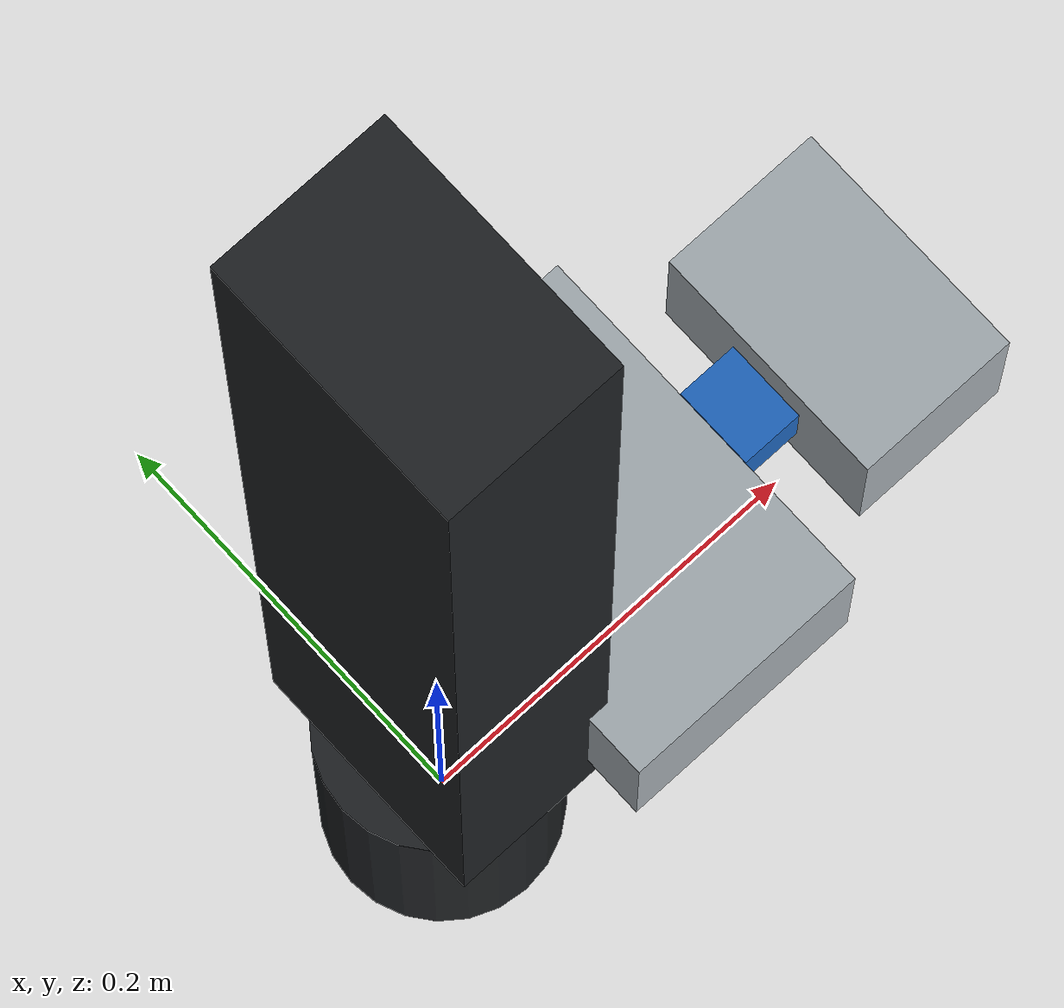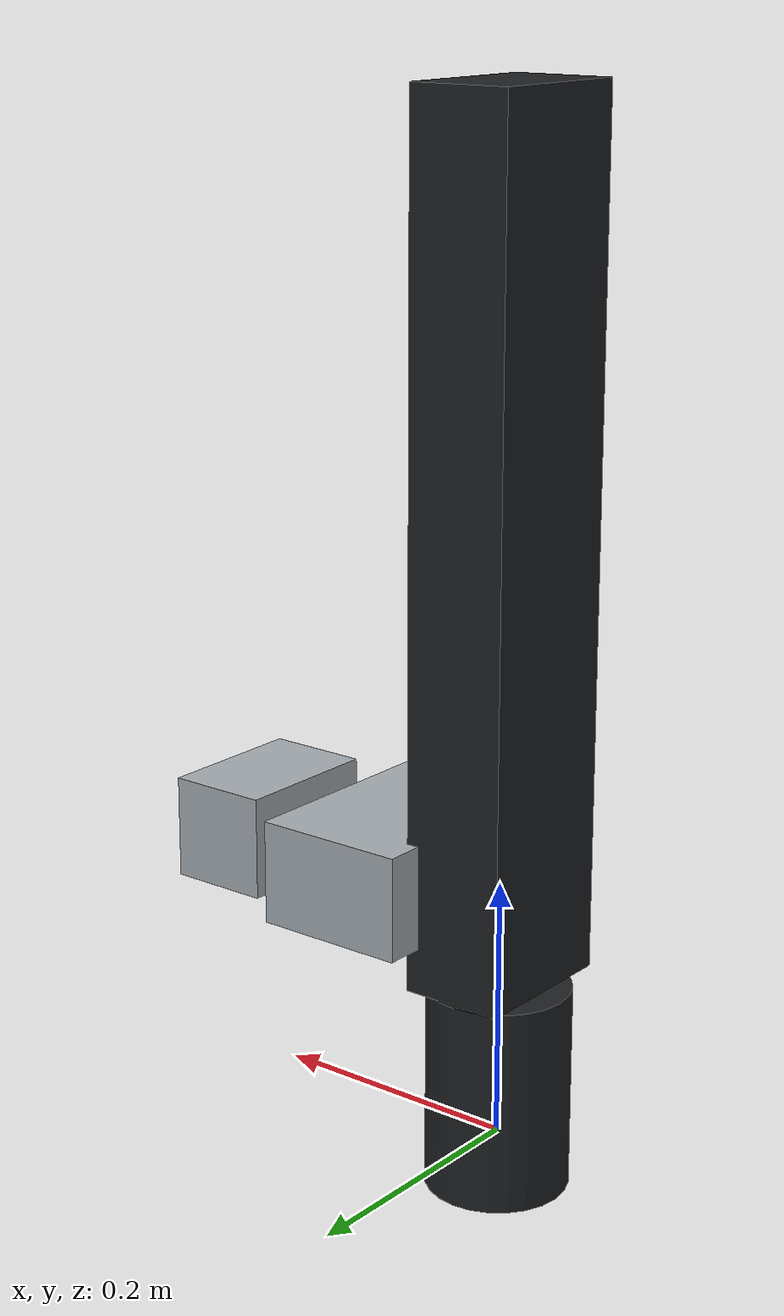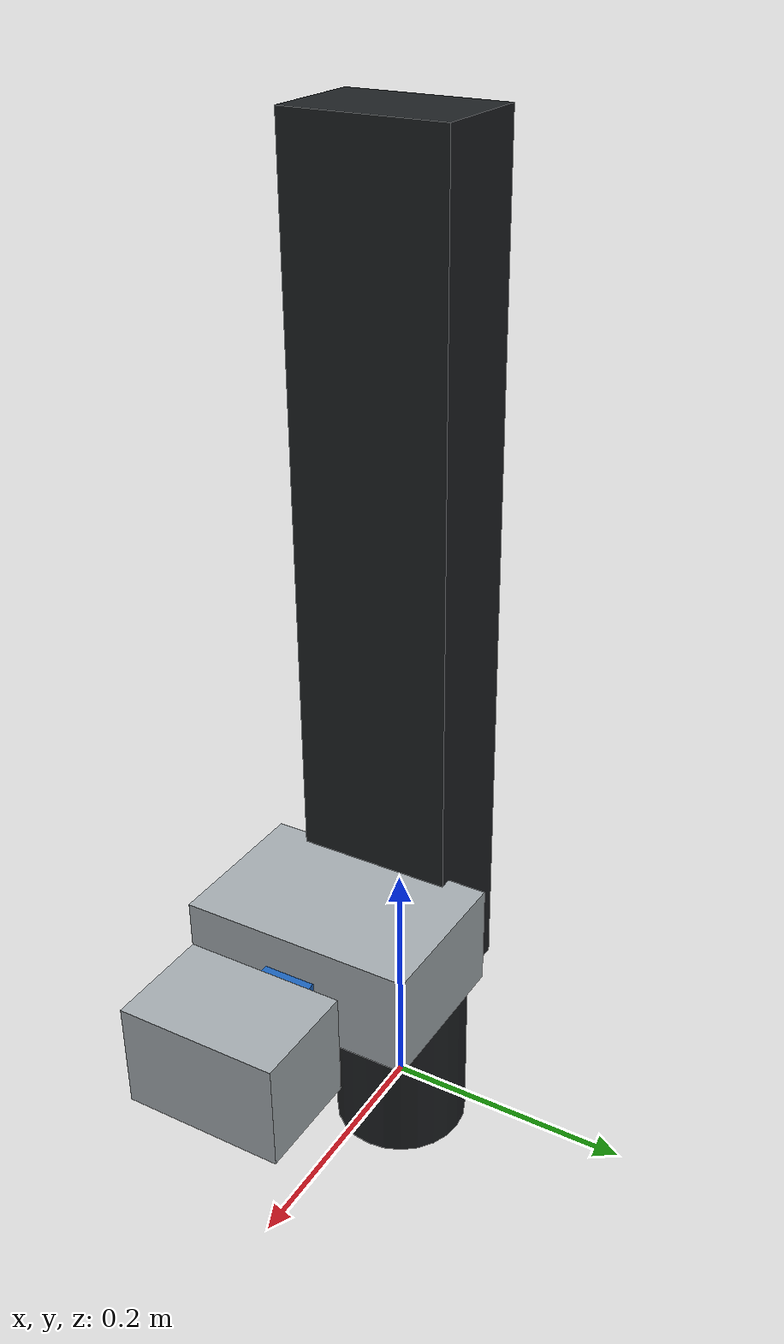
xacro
<?xml version="1.0"?>
<robot xmlns:xacro="http://www.ros.org/wiki/xacro" name="zfc_stage">
  <xacro:arg name="backend" default="ethercat"/>
  <xacro:arg name="controllers_file" default="${xacro.abs_filename('../config/controllers.yaml')}"/>
  <xacro:arg name="backend_file" default="${xacro.abs_filename('../config/gazebo.yaml')}"/>
  <xacro:arg name="hardware_calibration_file" default="${xacro.abs_filename('../config/hardware_calibration.yaml')}"/>
  <xacro:arg name="travel_m" default="0.50"/>
  <!-- Fortress velocity servo requires headroom above the 0.1 m/s trajectory;
       at the exact DART velocity limit its response can remain saturated. -->
  <xacro:arg name="velocity_limit_mps" default="${0.2 if '$(arg backend)' == 'gazebo' else 0.1}"/>
  <xacro:arg name="effort_limit_n" default="100.0"/>
  <xacro:arg name="carriage_mass_kg" default="2.0"/>
  <xacro:arg name="tool_mass_kg" default="0.20"/>
  <xacro:arg name="initial_position_m" default="0.0"/>
  <xacro:arg name="diagnostic_mode" default="production"/>
  <xacro:property name="backend" value="$(arg backend)"/>
  <xacro:property name="backend_plugins" value="${dict(ethercat='zfc_ethercat_hardware/EthercatHardware', gazebo='gz_ros2_control/GazeboSimSystem')}"/>
  <xacro:property name="controllers_path" value="$(arg controllers_file)"/>
  <xacro:property name="travel" value="$(arg travel_m)"/>
  <xacro:property name="carriage_mass" value="$(arg carriage_mass_kg)"/>
  <xacro:property name="tool_mass" value="$(arg tool_mass_kg)"/>
  <xacro:property name="simulation_datum" value="${0.25 if backend == 'gazebo' else 0.0}"/>

  <material name="rail_black"><color rgba="0.12 0.13 0.14 1"/></material>
  <material name="aluminium"><color rgba="0.65 0.68 0.70 1"/></material>
  <material name="sensor_blue"><color rgba="0.12 0.40 0.75 1"/></material>

  <xacro:macro name="box_inertia" params="mass sx sy sz xyz:='0 0 0'">
    <inertial>
      <origin xyz="${xyz}"/>
      <mass value="${mass}"/>
      <inertia ixx="${mass*(sy*sy+sz*sz)/12}" ixy="0" ixz="0"
               iyy="${mass*(sx*sx+sz*sz)/12}" iyz="0"
               izz="${mass*(sx*sx+sy*sy)/12}"/>
    </inertial>
  </xacro:macro>

  <!-- Fixed world attachment, rather than making the whole model static. -->
  <link name="world"/>
  <joint name="world_to_base" type="fixed">
    <parent link="world"/><child link="base_link"/>
  </joint>
  <link name="base_link">
    <xacro:box_inertia mass="5.0" sx="0.08" sy="0.12" sz="${travel+0.15}"
                       xyz="0 0 ${0.20+travel/2}"/>
    <visual>
      <origin xyz="0 0 ${0.20+travel/2}"/>
      <geometry><box size="0.08 0.12 ${travel+0.15}"/></geometry>
      <material name="rail_black"/>
    </visual>
    <collision>
      <origin xyz="0 0 ${0.20+travel/2}"/>
      <geometry><box size="0.08 0.12 ${travel+0.15}"/></geometry>
    </collision>
    <!-- Stationary motor drawn for context; no rotor/transmission dynamics. -->
    <visual>
      <origin xyz="0 0 0.04"/>
      <geometry><cylinder radius="0.055" length="0.16"/></geometry>
      <material name="rail_black"/>
    </visual>
  </link>

  <joint name="carriage" type="prismatic">
    <parent link="base_link"/><child link="carriage_link"/>
    <origin xyz="${0.14 if backend == 'gazebo' else 0.09} 0 ${0.20+simulation_datum}"/>
    <axis xyz="0 0 1"/>
    <limit lower="${-simulation_datum}" upper="${travel-simulation_datum}" effort="$(arg effort_limit_n)"
           velocity="$(arg velocity_limit_mps)"/>
    <dynamics damping="0.0" friction="0.0"/>
  </joint>
  <link name="carriage_link">
    <xacro:box_inertia mass="${carriage_mass}" sx="0.12" sy="0.18" sz="0.08"/>
    <visual><geometry><box size="0.12 0.18 0.08"/></geometry><material name="aluminium"/></visual>
    <collision><geometry><box size="0.12 0.18 0.08"/></geometry></collision>
  </link>

  <joint name="load_cell_joint" type="fixed">
    <parent link="carriage_link"/><child link="load_cell_link"/>
    <origin xyz="0.08 0 0" rpy="0 -1.5707963267948966 0"/>
  </joint>
  <link name="load_cell_link">
    <xacro:box_inertia mass="0.05" sx="0.03" sy="0.04" sz="0.03"/>
    <visual><geometry><box size="0.03 0.04 0.03"/></geometry><material name="sensor_blue"/></visual>
    <collision><geometry><box size="0.03 0.04 0.03"/></geometry></collision>
  </link>
  <joint name="tool_mount" type="fixed">
    <parent link="load_cell_link"/><child link="tool_link"/>
    <origin xyz="0 0 ${-0.06 if backend == 'gazebo' else -0.055}"/>
  </joint>
  <link name="tool_link">
    <xacro:box_inertia mass="${tool_mass}" sx="0.08" sy="0.12" sz="0.08"/>
    <visual><geometry><box size="0.08 0.12 0.08"/></geometry><material name="aluminium"/></visual>
    <collision><geometry><box size="0.08 0.12 0.08"/></geometry></collision>
  </link>

  <!-- One shared controller-facing contract, regardless of transport. -->
  <ros2_control name="StageSystem" type="system">
    <hardware>
      <!-- Dictionary lookup rejects invalid backends during expansion. -->
      <plugin>${backend_plugins[backend]}</plugin>
      <xacro:if value="${backend == 'ethercat'}">
        <xacro:property name="cal" value="${xacro.load_yaml('$(arg hardware_calibration_file)')}"/>
        <param name="startup_timeout_seconds">20</param>
        <param name="update_rate_hz">1000</param>
        <param name="diagnostic_mode">$(arg diagnostic_mode)</param>
        <param name="conventions_confirmed">${dict([(True, 'true'), (False, 'false')])[cal['conventions_confirmed']]}</param>
        <param name="force_frame">${cal['force_frame']}</param>
        <param name="force_channel_mapping">${cal['force_channel_mapping']}</param>
        <!-- Installation calibration; NaN must block hardware configuration. -->
        <param name="m_per_count">${cal['m_per_count']}</param>
        <param name="velocity_from_encoder">${dict([(True, 'true'), (False, 'false')])[cal.get('velocity_from_encoder', True)]}</param>
        <param name="soft_bounds_enabled">${dict([(True, 'true'), (False, 'false')])[cal.get('soft_bounds_enabled', False)]}</param>
        <param name="soft_lower_m">${cal.get('soft_lower_m', float('nan'))}</param>
        <param name="soft_upper_m">${cal.get('soft_upper_m', float('nan'))}</param>
        <param name="velocity_mps_per_raw_unit">${cal.get('velocity_mps_per_raw_unit', float('nan'))}</param>
        <param name="force_x_newtons_per_count">${cal['force_x_newtons_per_count']}</param>
        <param name="force_y_newtons_per_count">${cal['force_y_newtons_per_count']}</param>
        <param name="force_z_newtons_per_count">${cal['force_z_newtons_per_count']}</param>
        <param name="force_x_zero_counts">${cal.get('force_x_zero_counts', 0.0)}</param>
        <param name="force_y_zero_counts">${cal.get('force_y_zero_counts', 0.0)}</param>
        <param name="force_z_zero_counts">${cal.get('force_z_zero_counts', 0.0)}</param>
      </xacro:if>
    </hardware>
    <joint name="carriage">
      <command_interface name="position">
        <!-- Only Gazebo knows these model-coordinate mechanical bounds.
             Physical session-relative soft bounds are independent calibration. -->
        <xacro:if value="${backend == 'gazebo'}">
          <param name="min">${-simulation_datum}</param><param name="max">${travel-simulation_datum}</param>
        </xacro:if>
      </command_interface>
      <state_interface name="position">
        <xacro:if value="${backend == 'gazebo'}">
          <param name="initial_value">$(arg initial_position_m)</param>
        </xacro:if>
      </state_interface>
      <state_interface name="velocity">
        <xacro:if value="${backend == 'gazebo'}"><param name="initial_value">0.0</param></xacro:if>
      </state_interface>
      <!-- No effort state until motor torque -> joint force is verified. -->
    </joint>
    <sensor name="load_cell">
      <state_interface name="force.x"/>
      <state_interface name="force.y"/>
      <state_interface name="force.z"/>
    </sensor>
  </ros2_control>

  <xacro:if value="${backend == 'gazebo'}">
    <gazebo reference="load_cell_joint">
      <preserveFixedJoint>true</preserveFixedJoint>
      <sensor name="load_cell" type="force_torque">
        <always_on>true</always_on>
        <update_rate>1000</update_rate>
        <topic>load_cell</topic>
        <force_torque>
          <frame>child</frame>
          <measure_direction>parent_to_child</measure_direction>
        </force_torque>
      </sensor>
    </gazebo>
    <!-- Keep the force target an actual downstream link, not a merged alias. -->
    <gazebo reference="tool_mount"><preserveFixedJoint>true</preserveFixedJoint></gazebo>
    <gazebo>
      <plugin filename="gz_ros2_control-system" name="gz_ros2_control::GazeboSimROS2ControlPlugin">
        <robot_param>robot_description</robot_param>
        <robot_param_node>robot_state_publisher</robot_param_node>
        <parameters>${dict(absolute=controllers_path)['absolute' if controllers_path.startswith('/') else 'controllers_file_must_be_absolute']}</parameters>
        <parameters>$(arg backend_file)</parameters>
        <controller_manager_name>controller_manager</controller_manager_name>
      </plugin>
    </gazebo>
  </xacro:if>
</robot>
